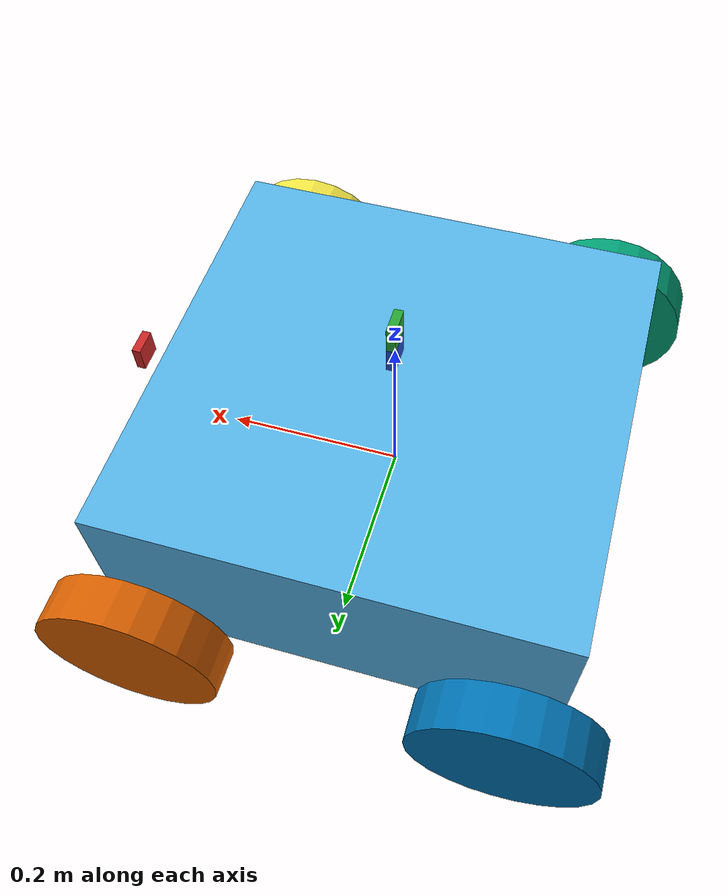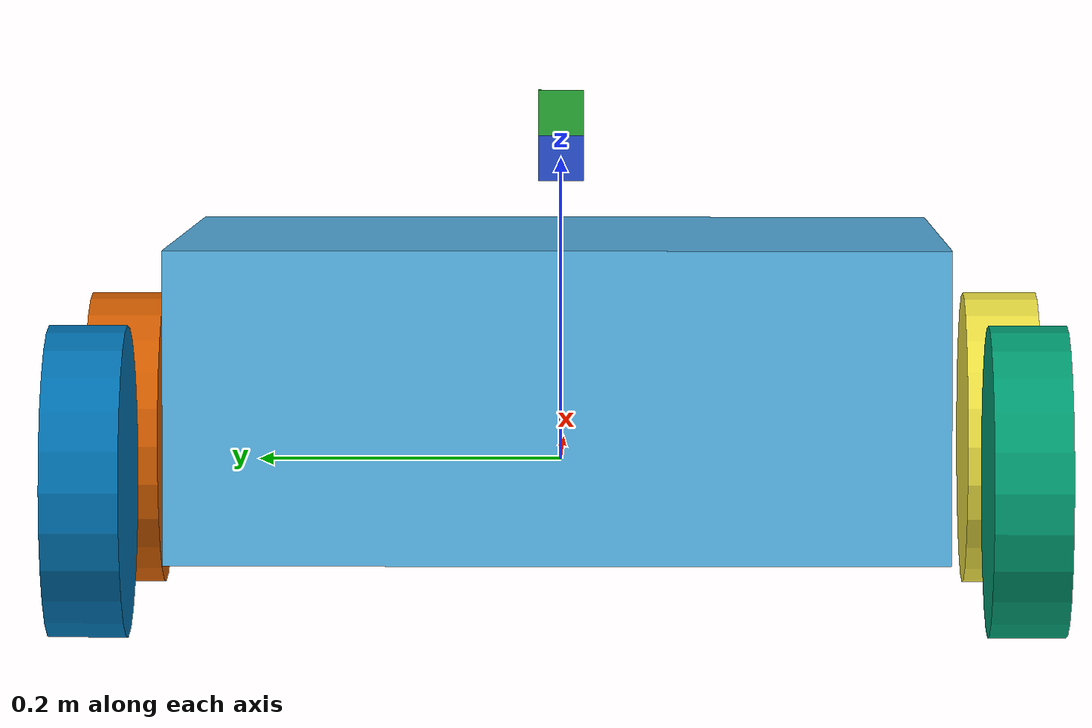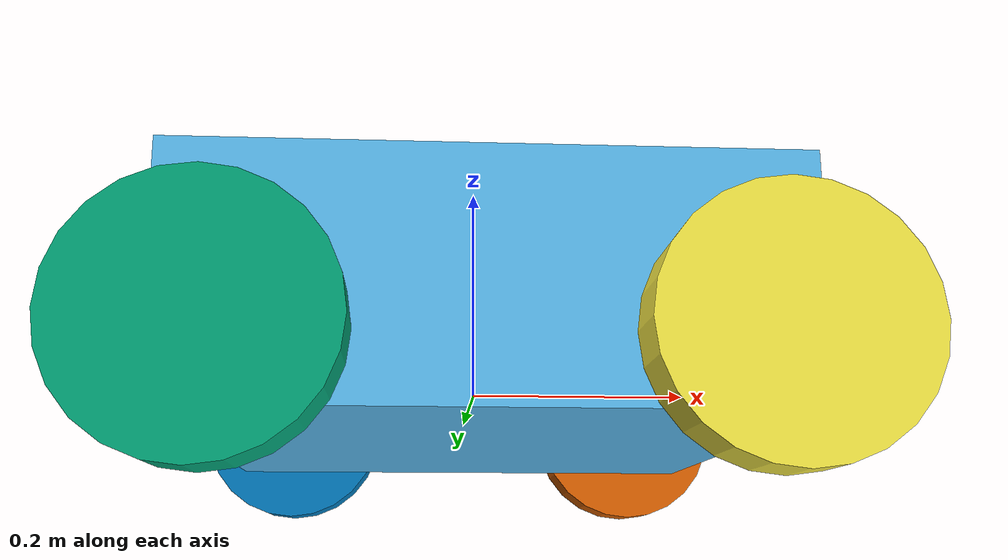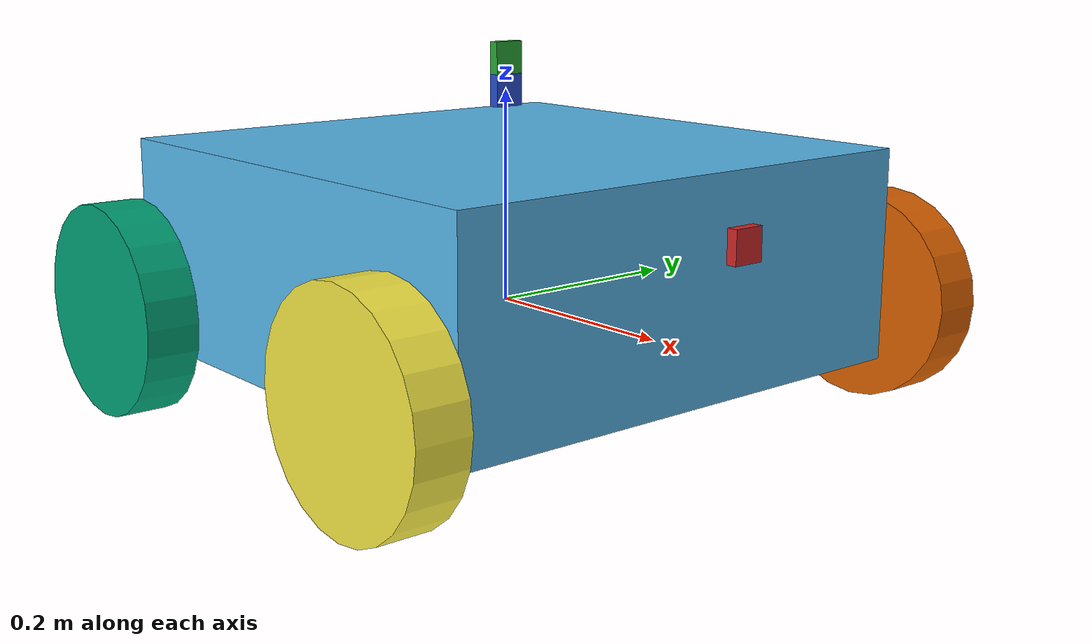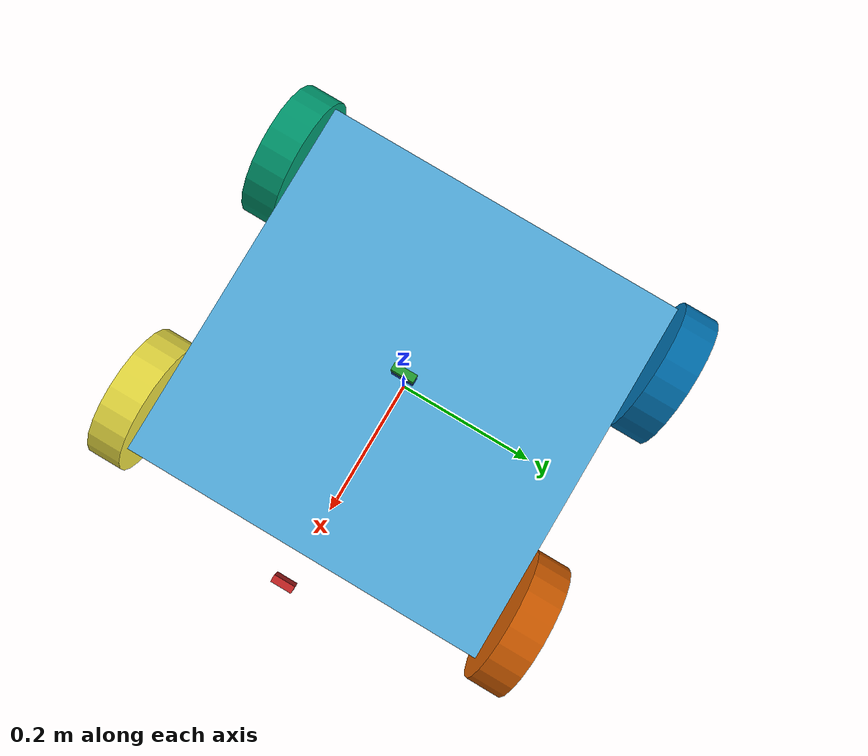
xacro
<?xml version="1.0"?>
<robot xmlns:xacro="http://www.ros.org/wiki/xacro"  name="robot">

    <xacro:include filename="rover_des.xacro"/>
    <xacro:include filename="rover_depth.xacro"/>
    <xacro:include filename="rover_ros2_control.xacro"/>
    <xacro:include filename="rover_gazebo_imu.xacro"/>
    <xacro:include filename="rover_gps.xacro"/>
</robot>

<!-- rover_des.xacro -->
<robot xmlns:xacro="http://www.ros.org/wiki/xacro">
	<xacro:property name="robot_chassis_mass" value="15" />
	<xacro:property name="robot_chassis_length" value="0.2" />
	<xacro:property name="robot_chassis_radius" value="0.25" />
	<xacro:property name="robot_caster_wheel_radius" value="0.05" />
	<xacro:property name="robot_caster_wheel_radius_collision" value="0.0499" />

	<xacro:property name="robot_wheel_mass" value="5" />
	<xacro:property name="robot_wheel_length" value="0.05" />
	<xacro:property name="robot_wheel_radius" value="0.1" />

	<link
		name="base_link">
	</link>

	<joint name="chassis_joint" type="fixed">
		<parent link="base_link" />
		<child link="chassis" />
		<origin xyz="0 0 0" rpy="0 0 0" />
	</joint>

	<!-- Make Chassis of Bot -->
	<link name="chassis">
		<pose>0 0 0.1 0 0 0</pose>

		<inertial>
			<mass value="${robot_chassis_mass}" />
			<origin xyz="0.0 0 0" rpy=" 0 0 0" />

			<inertia
				ixx="0.147116667" ixy="0" ixz="0"
				iyy="0.334951167" iyz="0"
				izz="0.3978345"
			/>
		</inertial>

		<collision name="collision">
			<origin xyz="0 0 0.05" rpy=" 0 0 0" />
			<geometry>
				<box size="0.5 0.5 0.2" />
			</geometry>
		</collision>

		<visual name="chassis_visual">
			<origin xyz="0 0 0.05" rpy=" 0 0 0" />
			<geometry>
				<box size="0.5 0.5 0.2" />
			</geometry>

		</visual>

	</link>

	<!-- Right Wheel Back -->
	<link name="right_rear_link">
		<inertial>
			<mass value="${robot_wheel_mass}" />
			<origin xyz="0 0 0" rpy="0 1.5707 1.5707" />
			<inertia
				ixx="0.1" ixy="0.0" ixz="0.0"
				iyy="0.1" iyz="0.0"
				izz="0.1"
			/>
		</inertial>

		<visual>
			<origin xyz="0 0 0" rpy="0 1.5707 1.5707" />
			<geometry>
				<cylinder radius="${robot_wheel_radius}" length="${robot_wheel_length}" />
			</geometry>
		</visual>

		<collision>
			<origin xyz="0 0 0" rpy="0 1.5707 1.5707" />
			<geometry>
				<cylinder radius="${robot_wheel_radius}" length="${robot_wheel_length}" />
			</geometry>
		</collision>

	</link>

	<!-- Right Wheel Front-->
	<link name="right_front_link">
		<inertial>
			<mass value="${robot_wheel_mass}" />
			<origin xyz="0 0 0" rpy="0 1.5707 1.5707" />
			<inertia
				ixx="0.1" ixy="0.0" ixz="0.0"
				iyy="0.1" iyz="0.0"
				izz="0.1"
			/>
		</inertial>

		<visual>
			<origin xyz="0 0 0" rpy="0 1.5707 1.5707" />
			<geometry>
				<cylinder radius="${robot_wheel_radius}" length="${robot_wheel_length}" />
			</geometry>
		</visual>

		<collision>
			<origin xyz="0 0 0" rpy="0 1.5707 1.5707" />
			<geometry>
				<cylinder radius="${robot_wheel_radius}" length="${robot_wheel_length}" />
			</geometry>
		</collision>

	</link>

	<!-- Left wheel Back-->
	<link name="left_rear_link">
		<inertial>
			<mass value="${robot_wheel_mass}" />
			<origin xyz="0 0 0" rpy="0 1.5707 1.5707" />
			<inertia
				ixx="0.1" ixy="0.0" ixz="0.0"
				iyy="0.1" iyz="0.0"
				izz="0.1"
			/>
		</inertial>

		<visual>
			<origin xyz="0 0 0" rpy="0 1.5707 1.5707" />
			<geometry>
				<cylinder radius="${robot_wheel_radius}" length="${robot_wheel_length}" />
			</geometry>
		</visual>

		<collision>
			<origin xyz="0 0 0" rpy="0 1.5707 1.5707" />
			<geometry>
				<cylinder radius="${robot_wheel_radius}" length="${robot_wheel_length}" />
			</geometry>
		</collision>

	</link>

	<!-- Left wheel Front-->
	<link name="left_front_link">
		<inertial>
			<mass value="${robot_wheel_mass}" />
			<origin xyz="0 0 0" rpy="0 1.5707 1.5707" />
			<inertia
				ixx="0.1" ixy="0.0" ixz="0.0"
				iyy="0.1" iyz="0.0"
				izz="0.1"
			/>
		</inertial>

		<visual>
			<origin xyz="0 0 0" rpy="0 1.5707 1.5707" />
			<geometry>
				<cylinder radius="${robot_wheel_radius}" length="${robot_wheel_length}" />
			</geometry>
		</visual>

		<collision>
			<origin xyz="0 0 0" rpy="0 1.5707 1.5707" />
			<geometry>
				<cylinder radius="${robot_wheel_radius}" length="${robot_wheel_length}" />
			</geometry>
		</collision>
	</link>

	<!-- Define Joints -->

	<!-- Right Wheel Joint Back-->
	<joint type="continuous" name="right_rear_joint">
		<origin xyz="-0.2 -0.30 0" rpy="0 0 0" />
		<parent link="chassis" />
		<child link="right_rear_link" />
		<axis xyz="0 1 0" rpy="0 0 0" />
		<limit effort="10000" velocity="1000" />
		<dynamics damping="1.0" friction="1.0" />
	</joint>

	<!-- Right Wheel Joint Front-->
	<joint type="continuous" name="right_front_joint">
		<origin xyz="0.2 -0.30 0" rpy="0 0 0" />
		<parent link="chassis" />
		<child link="right_front_link" />
		<axis xyz="0 1 0" rpy="0 0 0" />
		<limit effort="10000" velocity="1000" />
		<dynamics damping="1.0" friction="1.0" />
	</joint>

	<!-- Left Wheel Joint Back-->
	<joint type="continuous" name="left_rear_joint">
		<origin xyz="-0.2 0.30 0" rpy="0 0 0" />
		<parent link="chassis" />
		<child link="left_rear_link" />
		<axis xyz="0 1 0" rpy="0 0 0" />
		<limit effort="10000" velocity="1000" />
		<dynamics damping="1.0" friction="1.0" />
	</joint>

	<!-- Left Wheel Joint Front-->
	<joint type="continuous" name="left_front_joint">
		<origin xyz="0.2 0.30 0" rpy="0 0 0" />
		<parent link="chassis" />
		<child link="left_front_link" />
		<axis xyz="0 1 0" rpy="0 0 0" />
		<limit effort="10000" velocity="1000" />
		<dynamics damping="1.0" friction="1.0" />
	</joint>

</robot>

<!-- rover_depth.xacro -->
<robot xmlns:xacro="http://www.ros.org/wiki/xacro">

    <joint name="camera_joint" type="fixed">
        <parent link="chassis" />
        <child link="camera_link" />
        <origin xyz="0.3 0 0.1" rpy="0 0 0" /><!-- 0 0.38 -0.2      0 0 ${pi/2}-->
    </joint>

    <link name="camera_link">

        <visual>
            <origin
                xyz="0 0 0"
                rpy="0 0 0" />
            <geometry>
                <box size="0.010 0.03 0.03" />
            </geometry>
            <material name="red" />
        </visual>

    </link>

    <joint name="camera_optical_joint" type="fixed">
        <parent link="camera_link" />
        <child link="camera_link_optical" />
        <origin xyz="0 0 0" rpy="${-pi/2} 0 ${-pi/2}" /><!-- ${pi/2} ${pi} ${pi/2}--><!-- ${-pi/2} 0 ${-pi/2}-->
    </joint>

    <link name="camera_link_optical">

    </link>

    <gazebo reference="camera_link">
        <material>Gazebo/Red</material>

        <sensor name="camera" type="depth">
            <pose> 0 0 0 0 0 0 </pose>
            <visualize>true</visualize>
            <update_rate>30</update_rate>
            <camera>
                <horizontal_fov>1.3962634</horizontal_fov>
                <image>
                    <format>B8G8R8</format>
                    <width>640</width>
                    <height>480</height>
                </image>
                <clip>
                    <near>0.05</near>
                    <far>8.0</far>
                </clip>
            </camera>
            <plugin name="camera_controller" filename="libgazebo_ros_camera.so">
                <frame_name>camera_link_optical</frame_name>
                <min_depth>0.02</min_depth>
                <max_depth>300.0</max_depth>
            </plugin>
        </sensor>
    </gazebo>

</robot>

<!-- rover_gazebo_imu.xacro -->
<robot xmlns:xacro="http://www.ros.org/wiki/xacro">

  <joint name="imu_joint" type="fixed">
    <parent link="chassis" />
    <child link="imu_link" />
    <origin xyz="0 0 0.20" rpy="0 0 0" /><!-- 0 0 ${-pi}-->
  </joint>

  <link name="imu_link">
    <visual>
      <origin
        xyz="0 0 0"
        rpy="0 0 0" />
      <geometry>
        <box size="0.010 0.03 0.03" />
      </geometry>
      <material name="blue" />
    </visual>
  </link>

  <gazebo reference="imu_link">
    <material>Gazebo/Blue</material>
  </gazebo>

  <gazebo reference="imu_link">
    <sensor name="imu_sensor" type="imu">
      <plugin filename="libgazebo_ros_imu_sensor.so" name="imu_controller">
        <ros>
          <remapping>~/out:=imu</remapping>
        </ros>
        <initial_orientation_as_reference>false</initial_orientation_as_reference>
        <frame_name>imu_link</frame_name>
      </plugin>

      <always_on>true</always_on>
      <update_rate>100</update_rate>
      <visualize>true</visualize>
      <imu>
        <angular_velocity>
          <x>
            <noise type="gaussian">
              <mean>0.0</mean>
              <stddev>2e-4</stddev>
              <bias_mean>0.0000075</bias_mean>
              <bias_stddev>0.0000008</bias_stddev>
            </noise>
          </x>
          <y>
            <noise type="gaussian">
              <mean>0.0</mean>
              <stddev>2e-4</stddev>
              <bias_mean>0.0000075</bias_mean>
              <bias_stddev>0.0000008</bias_stddev>
            </noise>
          </y>
          <z>
            <noise type="gaussian">
              <mean>0.0</mean>
              <stddev>2e-4</stddev>
              <bias_mean>0.0000075</bias_mean>
              <bias_stddev>0.0000008</bias_stddev>
            </noise>
          </z>
        </angular_velocity>
        <linear_acceleration>
          <x>
            <noise type="gaussian">
              <mean>0.0</mean>
              <stddev>1.7e-2</stddev>
              <bias_mean>0.1</bias_mean>
              <bias_stddev>0.001</bias_stddev>
            </noise>
          </x>
          <y>
            <noise type="gaussian">
              <mean>0.0</mean>
              <stddev>1.7e-2</stddev>
              <bias_mean>0.1</bias_mean>
              <bias_stddev>0.001</bias_stddev>
            </noise>
          </y>
          <z>
            <noise type="gaussian">
              <mean>0.0</mean>
              <stddev>1.7e-2</stddev>
              <bias_mean>0.1</bias_mean>
              <bias_stddev>0.001</bias_stddev>
            </noise>
          </z>
        </linear_acceleration>
      </imu>

    </sensor>
  </gazebo>

</robot>

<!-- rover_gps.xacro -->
<robot xmlns:xacro="http://www.ros.org/wiki/xacro">

  <joint name="gps_joint" type="fixed">
    <parent link="chassis" />
    <child link="gps_link" />
    <origin xyz="0 0 0.23" rpy="0 0 0"/>
  </joint>

  <link name="gps_link">

    <visual>
      <origin
        xyz="0 0 0"
        rpy="0 0 0" />
      <geometry>
        <box size="0.010 0.03 0.03" />
      </geometry>
      <material name="green" />
    </visual>

  </link>

  <gazebo reference="gps_link">
    <sensor name="gps_sensor" type="gps">
        <always_on>true</always_on>
        <update_rate>30</update_rate>
        <plugin name="gps_controller" filename="libgazebo_ros_gps_sensor.so">
            <ros>
                <remapping>gps_controller/out:=gps/fix</remapping>
            </ros>
            <frame_name>gps_link</frame_name>
        </plugin>
    </sensor>
    <material>Gazebo/Green</material>
</gazebo>

</robot>
